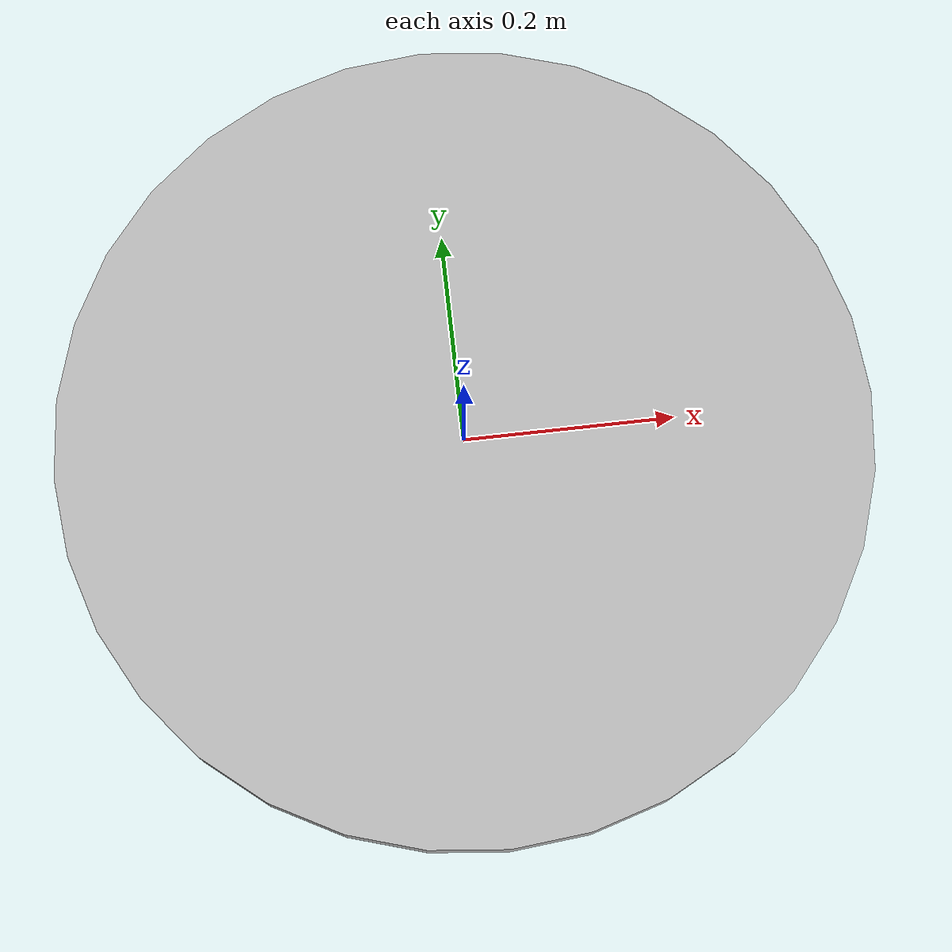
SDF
<?xml version="1.0" ?>
<sdf version="1.5">
  <world name="my_world">
    <include>
      <uri>model://sun</uri>
    </include>
    <include>
      <uri>model://sumoring</uri>
      <name>sumo-ring</name>
      <pose>0 0 0 0 0 0</pose>
    </include>
  </world>
</sdf>

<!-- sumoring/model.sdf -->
<sdf version="1.6">
<model name="sumo-ring">
  <static>true</static>
  <link name="link">
    <collision name="collision">
      <geometry>
        <mesh>
          <uri>model://sumoring/sumoring.dae</uri>
        </mesh>
      </geometry>
      <surface>
      	<friction>
      	  <ode>
      	    <mu>100</mu>
      	    <mu2>50</mu2>
      	  </ode>
      	</friction>
      </surface>
    </collision>
    <visual name="visual">
     <geometry>
        <mesh>
          <uri>model://sumoring/sumoring.dae</uri>
        </mesh>
      </geometry>
    </visual>
  </link>
</model>
</sdf>
